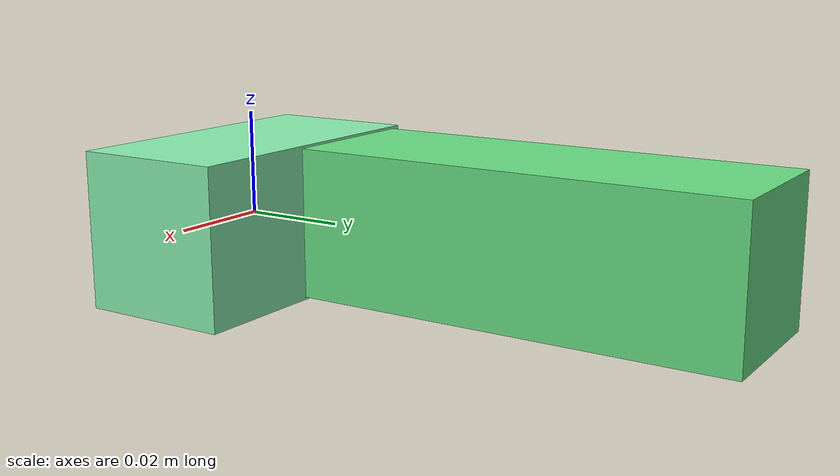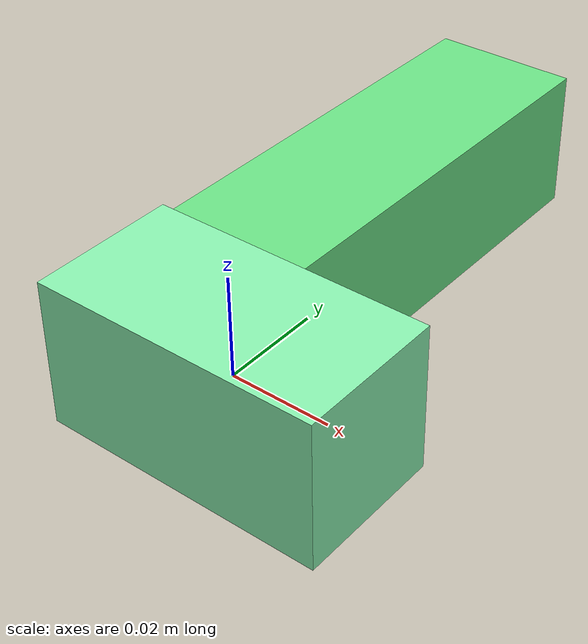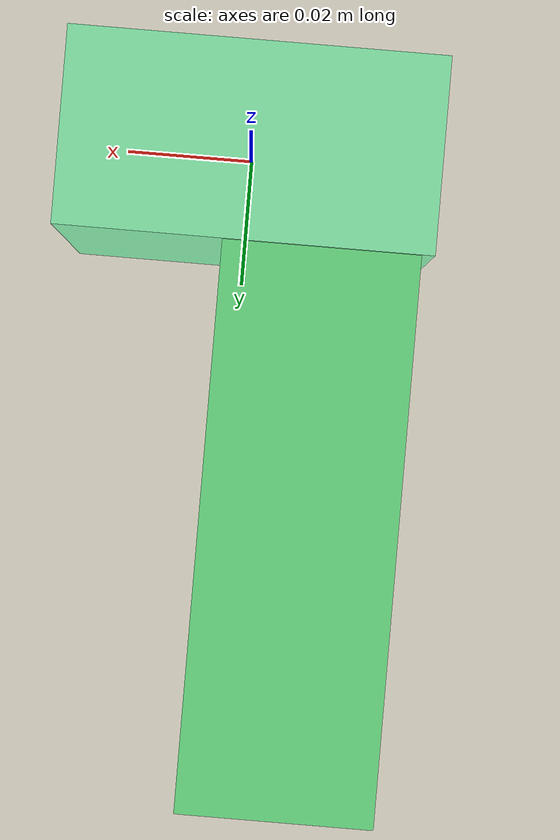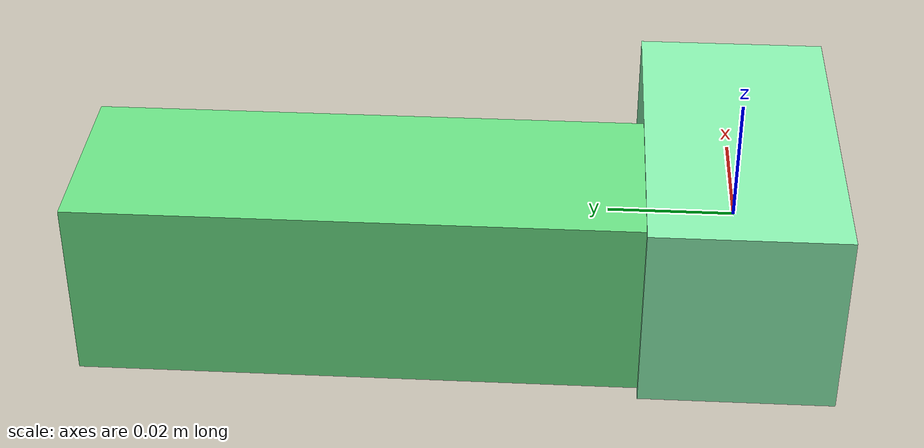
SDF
<sdf version="1.4"><world name="default"><model name="object0"><link name="link1"><pose>0 0 0 0 0 0</pose><inertial><pose>0 0 0 0 0 0</pose><mass>0.03112415033394485</mass><inertia><ixx>4.668622550091727e-06</ixx><ixy>0</ixy><iyy>1.0950669517996809e-05</iyy><ixz>0</ixz><iyz>0</iyz><izz>1.0950669517996809e-05</izz></inertia></inertial><visual name="link1_visual"><pose>0 0  0 0 0 0</pose><geometry><box><size>0.05763731543323121 0.03 0.03</size></box></geometry><material><diffuse>0.5392262130051959 0.9447590907557373 0.6864956291534345 1</diffuse></material></visual><collision><pose>0 0  0 0 0 0</pose><geometry><box><size>0.05763731543323121 0.03 0.03</size></box></geometry></collision></link><link name="link2"><pose>-0.011863387876866992 0.04847749049220202 0 0 0 0</pose><inertial><pose>0 0 0 0 0 0</pose><mass>0.057186486664709865</mass><inertia><ixx>5.7453361136760674e-05</ixx><ixy>0</ixy><iyy>8.296806106938323e-06</iyy><ixz>0</ixz><iyz>0</iyz><izz>5.773452802952883e-05</izz></inertia></inertial><visual name="link2_visual"><pose>0 0  0 0 0 0</pose><geometry><box><size>0.03 0.10590090123094419 0.028999999999999998</size></box></geometry><material><diffuse>0.41777378324333647 0.8837993800676824 0.5216369657764242 1</diffuse></material></visual><collision><pose>0 0  0 0 0 0</pose><geometry><box><size>0.03 0.10590090123094419 0.028999999999999998</size></box></geometry></collision></link><joint name="link_joint_0" type="fixed"><parent>link1</parent><child>link2</child><pose>0 0 0 0 0 0</pose><axis><xyz>0 0 1</xyz></axis></joint></model></world></sdf>
